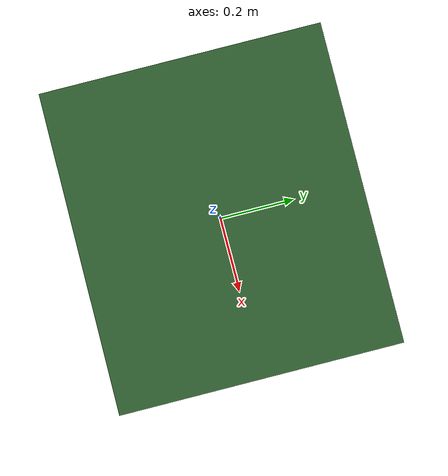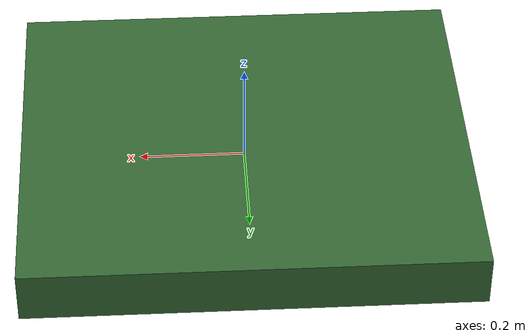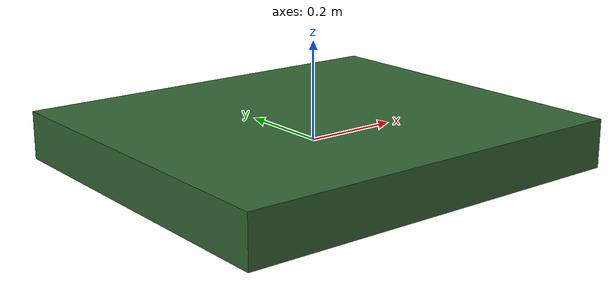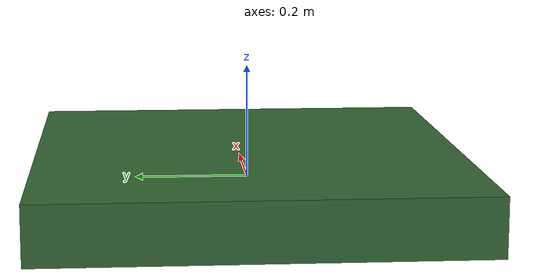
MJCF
<mujoco>
  <worldbody>
    <body name="table_body">
      <!-- Wood surface: high friction to prevent sliding and rotation -->
      <geom type="box" size="0.425 0.375 0.05" rgba="0.2 0.4 0.2 1"
            friction="0.8 0.5 0.0001"
            density="1000"
            condim="4"/>
    </body>
  </worldbody>
</mujoco>
